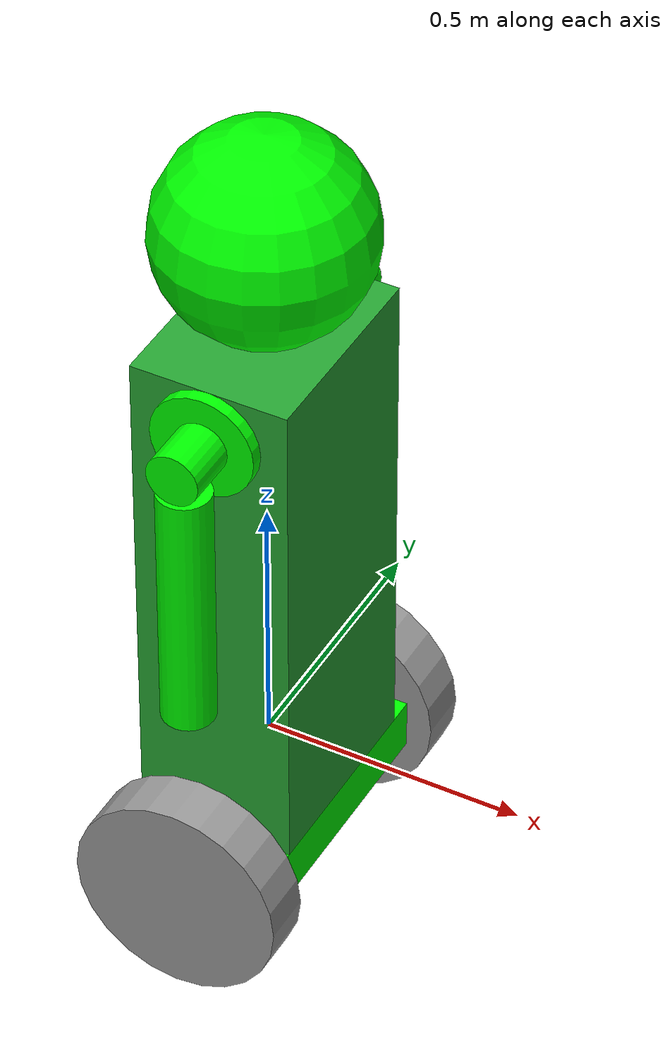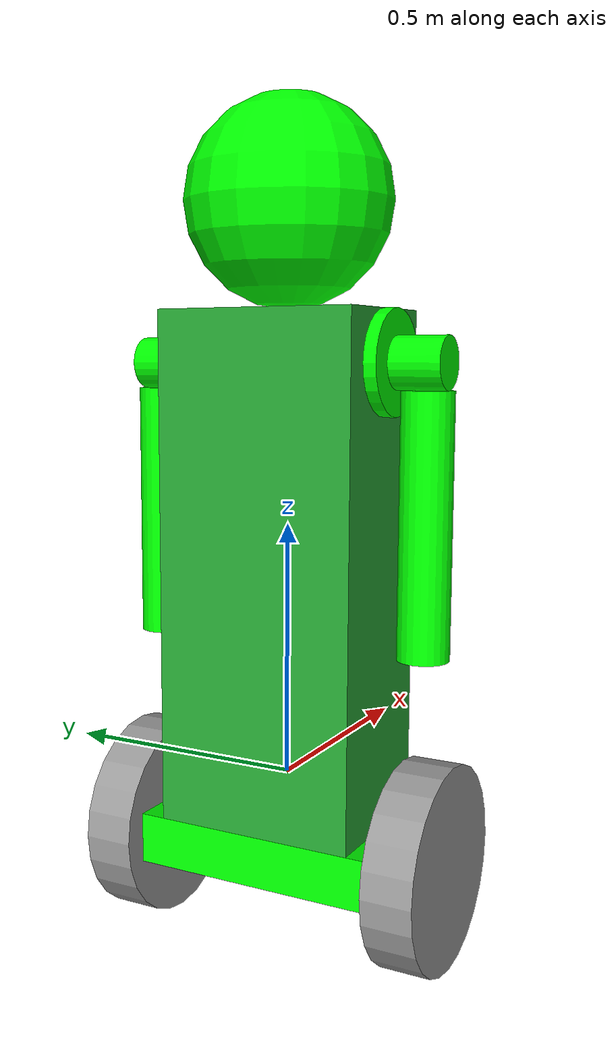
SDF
<?xml version='1.0'?>
<sdf version='1.6'>
  <model name='humanoid_robot'>
    <link name='link_0'>
      <pose frame=''>0 0 -0.1375 0 -0 0</pose>
      <inertial>
        <mass>10</mass>
        <inertia>
          <ixx>0.216667</ixx>
          <ixy>0</ixy>
          <ixz>0</ixz>
          <iyy>0.0833333</iyy>
          <iyz>0</iyz>
          <izz>0.283333</izz>
        </inertia>
        <pose frame=''>0 0 0 0 -0 0</pose>
      </inertial>
      <self_collide>0</self_collide>
      <kinematic>0</kinematic>
      <enable_wind>0</enable_wind>
      <gravity>1</gravity>
      <visual name='visual'>
        <pose frame=''>0 0 0 0 -0 0</pose>
        <geometry>
          <box>
            <size>0.3 0.5 0.1</size>
          </box>
        </geometry>
        <material>
          <lighting>1</lighting>
          <script>
            <uri>file://media/materials/scripts/gazebo.material</uri>
            <name>Gazebo/Grey</name>
          </script>
          <shader type='pixel'>
            <normal_map>__default__</normal_map>
          </shader>
          <ambient>0 1 0 1</ambient>
          <diffuse>0.7 0.7 0.7 1</diffuse>
          <specular>0.01 0.01 0.01 1</specular>
          <emissive>0 0 0 1</emissive>
        </material>
        <transparency>0</transparency>
        <cast_shadows>1</cast_shadows>
      </visual>
      <collision name='collision'>
        <laser_retro>0</laser_retro>
        <max_contacts>10</max_contacts>
        <pose frame=''>0 0 0 0 -0 0</pose>
        <geometry>
          <box>
            <size>0.3 0.5 0.1</size>
          </box>
        </geometry>
        <surface>
          <friction>
            <ode>
              <mu>1</mu>
              <mu2>1</mu2>
              <fdir1>0 0 0</fdir1>
              <slip1>0</slip1>
              <slip2>0</slip2>
            </ode>
            <torsional>
              <coefficient>1</coefficient>
              <patch_radius>0</patch_radius>
              <surface_radius>0</surface_radius>
              <use_patch_radius>1</use_patch_radius>
              <ode>
                <slip>0</slip>
              </ode>
            </torsional>
          </friction>
          <bounce>
            <restitution_coefficient>0</restitution_coefficient>
            <threshold>1e+06</threshold>
          </bounce>
          <contact>
            <collide_without_contact>0</collide_without_contact>
            <collide_without_contact_bitmask>1</collide_without_contact_bitmask>
            <collide_bitmask>1</collide_bitmask>
            <ode>
              <soft_cfm>0</soft_cfm>
              <soft_erp>0.2</soft_erp>
              <kp>1e+13</kp>
              <kd>1</kd>
              <max_vel>0.01</max_vel>
              <min_depth>0</min_depth>
            </ode>
            <bullet>
              <split_impulse>1</split_impulse>
              <split_impulse_penetration_threshold>-0.01</split_impulse_penetration_threshold>
              <soft_cfm>0</soft_cfm>
              <soft_erp>0.2</soft_erp>
              <kp>1e+13</kp>
              <kd>1</kd>
            </bullet>
          </contact>
        </surface>
      </collision>
    </link>
    <link name='link_0_0'>
      <pose frame=''>0 0 1.1125 0 -0 0</pose>
      <inertial>
        <mass>0.25</mass>
        <inertia>
          <ixx>0.1</ixx>
          <ixy>0</ixy>
          <ixz>0</ixz>
          <iyy>0.1</iyy>
          <iyz>0</iyz>
          <izz>0.1</izz>
        </inertia>
        <pose frame=''>0 0 0 0 -0 0</pose>
      </inertial>
      <self_collide>0</self_collide>
      <kinematic>0</kinematic>
      <enable_wind>0</enable_wind>
      <visual name='visual'>
        <pose frame=''>0 0 0 0 -0 0</pose>
        <geometry>
          <sphere>
            <radius>0.2</radius>
          </sphere>
        </geometry>
        <material>
          <lighting>1</lighting>
          <script>
            <uri>file://media/materials/scripts/gazebo.material</uri>
            <name>Gazebo/Grey</name>
          </script>
          <shader type='pixel'>
            <normal_map>__default__</normal_map>
          </shader>
          <ambient>0 1 0 1</ambient>
          <diffuse>0.7 0.7 0.7 1</diffuse>
          <specular>0.01 0.01 0.01 1</specular>
          <emissive>0 0 0 1</emissive>
        </material>
        <transparency>0</transparency>
        <cast_shadows>1</cast_shadows>
      </visual>
      <collision name='collision'>
        <laser_retro>0</laser_retro>
        <max_contacts>10</max_contacts>
        <pose frame=''>0 0 0 0 -0 0</pose>
        <geometry>
          <sphere>
            <radius>0.2</radius>
          </sphere>
        </geometry>
        <surface>
          <friction>
            <ode>
              <mu>1</mu>
              <mu2>1</mu2>
              <fdir1>0 0 0</fdir1>
              <slip1>0</slip1>
              <slip2>0</slip2>
            </ode>
            <torsional>
              <coefficient>1</coefficient>
              <patch_radius>0</patch_radius>
              <surface_radius>0</surface_radius>
              <use_patch_radius>1</use_patch_radius>
              <ode>
                <slip>0</slip>
              </ode>
            </torsional>
          </friction>
          <bounce>
            <restitution_coefficient>0</restitution_coefficient>
            <threshold>1e+06</threshold>
          </bounce>
          <contact>
            <collide_without_contact>0</collide_without_contact>
            <collide_without_contact_bitmask>1</collide_without_contact_bitmask>
            <collide_bitmask>1</collide_bitmask>
            <ode>
              <soft_cfm>0</soft_cfm>
              <soft_erp>0.2</soft_erp>
              <kp>1e+13</kp>
              <kd>1</kd>
              <max_vel>0.01</max_vel>
              <min_depth>0</min_depth>
            </ode>
            <bullet>
              <split_impulse>1</split_impulse>
              <split_impulse_penetration_threshold>-0.01</split_impulse_penetration_threshold>
              <soft_cfm>0</soft_cfm>
              <soft_erp>0.2</soft_erp>
              <kp>1e+13</kp>
              <kd>1</kd>
            </bullet>
          </contact>
        </surface>
      </collision>
    </link>
    <link name='link_1'>
      <pose frame=''>0 -0.300019 -0.137182 1.5707 -0 0</pose>
      <inertial>
        <mass>1</mass>
        <inertia>
          <ixx>0.145833</ixx>
          <ixy>0</ixy>
          <ixz>0</ixz>
          <iyy>0.145833</iyy>
          <iyz>0</iyz>
          <izz>0.125</izz>
        </inertia>
        <pose frame=''>0 0 0 0 -0 0</pose>
      </inertial>
      <self_collide>0</self_collide>
      <kinematic>0</kinematic>
      <enable_wind>0</enable_wind>
      <visual name='visual'>
        <pose frame=''>0 0 0 0 -0 0</pose>
        <geometry>
          <cylinder>
            <radius>0.2</radius>
            <length>0.1</length>
          </cylinder>
        </geometry>
        <material>
          <lighting>1</lighting>
          <script>
            <uri>file://media/materials/scripts/gazebo.material</uri>
            <name>Gazebo/Grey</name>
          </script>
          <shader type='pixel'>
            <normal_map>__default__</normal_map>
          </shader>
          <ambient>1 1 1 1</ambient>
          <diffuse>0.7 0.7 0.7 1</diffuse>
          <specular>0.01 0.01 0.01 1</specular>
          <emissive>0 0 0 1</emissive>
        </material>
        <transparency>0</transparency>
        <cast_shadows>1</cast_shadows>
      </visual>
      <collision name='collision'>
        <laser_retro>0</laser_retro>
        <max_contacts>10</max_contacts>
        <pose frame=''>0 0 0 0 -0 0</pose>
        <geometry>
          <cylinder>
            <radius>0.2</radius>
            <length>0.1</length>
          </cylinder>
        </geometry>
        <surface>
          <friction>
            <ode>
              <mu>1</mu>
              <mu2>1</mu2>
              <fdir1>0 0 0</fdir1>
              <slip1>0</slip1>
              <slip2>0</slip2>
            </ode>
            <torsional>
              <coefficient>1</coefficient>
              <patch_radius>0</patch_radius>
              <surface_radius>0</surface_radius>
              <use_patch_radius>1</use_patch_radius>
              <ode>
                <slip>0</slip>
              </ode>
            </torsional>
          </friction>
          <bounce>
            <restitution_coefficient>0</restitution_coefficient>
            <threshold>1e+06</threshold>
          </bounce>
          <contact>
            <collide_without_contact>0</collide_without_contact>
            <collide_without_contact_bitmask>1</collide_without_contact_bitmask>
            <collide_bitmask>1</collide_bitmask>
            <ode>
              <soft_cfm>0</soft_cfm>
              <soft_erp>0.2</soft_erp>
              <kp>1e+13</kp>
              <kd>1</kd>
              <max_vel>0.01</max_vel>
              <min_depth>0</min_depth>
            </ode>
            <bullet>
              <split_impulse>1</split_impulse>
              <split_impulse_penetration_threshold>-0.01</split_impulse_penetration_threshold>
              <soft_cfm>0</soft_cfm>
              <soft_erp>0.2</soft_erp>
              <kp>1e+13</kp>
              <kd>1</kd>
            </bullet>
          </contact>
        </surface>
      </collision>
    </link>
    <link name='link_1_0'>
      <pose frame=''>0 -0.275033 0.812507 1.5707 -0 0</pose>
      <inertial>
        <mass>0.1</mass>
        <inertia>
          <ixx>0.145833</ixx>
          <ixy>0</ixy>
          <ixz>0</ixz>
          <iyy>0.145833</iyy>
          <iyz>0</iyz>
          <izz>0.125</izz>
        </inertia>
        <pose frame=''>0 0 0 0 -0 0</pose>
      </inertial>
      <self_collide>0</self_collide>
      <kinematic>0</kinematic>
      <enable_wind>0</enable_wind>
      <visual name='visual'>
        <pose frame=''>0 0 0 0 -0 0</pose>
        <geometry>
          <cylinder>
            <radius>0.05</radius>
            <length>0.1</length>
          </cylinder>
        </geometry>
        <material>
          <lighting>1</lighting>
          <script>
            <uri>file://media/materials/scripts/gazebo.material</uri>
            <name>Gazebo/Grey</name>
          </script>
          <shader type='pixel'>
            <normal_map>__default__</normal_map>
          </shader>
          <ambient>0 1 0 1</ambient>
          <diffuse>0.7 0.7 0.7 1</diffuse>
          <specular>0.01 0.01 0.01 1</specular>
          <emissive>0 0 0 1</emissive>
        </material>
        <transparency>0</transparency>
        <cast_shadows>1</cast_shadows>
      </visual>
      <collision name='collision'>
        <laser_retro>0</laser_retro>
        <max_contacts>10</max_contacts>
        <pose frame=''>0 0 0 0 -0 0</pose>
        <geometry>
          <cylinder>
            <radius>0.05</radius>
            <length>0.1</length>
          </cylinder>
        </geometry>
        <surface>
          <friction>
            <ode>
              <mu>1</mu>
              <mu2>1</mu2>
              <fdir1>0 0 0</fdir1>
              <slip1>0</slip1>
              <slip2>0</slip2>
            </ode>
            <torsional>
              <coefficient>1</coefficient>
              <patch_radius>0</patch_radius>
              <surface_radius>0</surface_radius>
              <use_patch_radius>1</use_patch_radius>
              <ode>
                <slip>0</slip>
              </ode>
            </torsional>
          </friction>
          <bounce>
            <restitution_coefficient>0</restitution_coefficient>
            <threshold>1e+06</threshold>
          </bounce>
          <contact>
            <collide_without_contact>0</collide_without_contact>
            <collide_without_contact_bitmask>1</collide_without_contact_bitmask>
            <collide_bitmask>1</collide_bitmask>
            <ode>
              <soft_cfm>0</soft_cfm>
              <soft_erp>0.2</soft_erp>
              <kp>1e+13</kp>
              <kd>1</kd>
              <max_vel>0.01</max_vel>
              <min_depth>0</min_depth>
            </ode>
            <bullet>
              <split_impulse>1</split_impulse>
              <split_impulse_penetration_threshold>-0.01</split_impulse_penetration_threshold>
              <soft_cfm>0</soft_cfm>
              <soft_erp>0.2</soft_erp>
              <kp>1e+13</kp>
              <kd>1</kd>
            </bullet>
          </contact>
        </surface>
      </collision>
    </link>
    <link name='link_1_0_clone'>
      <pose frame=''>0 0.275024 0.812479 1.5707 -0 0</pose>
      <inertial>
        <mass>0.1</mass>
        <inertia>
          <ixx>0.145833</ixx>
          <ixy>0</ixy>
          <ixz>0</ixz>
          <iyy>0.145833</iyy>
          <iyz>0</iyz>
          <izz>0.125</izz>
        </inertia>
        <pose frame=''>0 0 0 0 -0 0</pose>
      </inertial>
      <self_collide>0</self_collide>
      <kinematic>0</kinematic>
      <enable_wind>0</enable_wind>
      <visual name='visual_0'>
        <pose frame=''>0 0 0 0 -0 0</pose>
        <geometry>
          <cylinder>
            <radius>0.05</radius>
            <length>0.1</length>
          </cylinder>
        </geometry>
        <material>
          <lighting>1</lighting>
          <script>
            <uri>file://media/materials/scripts/gazebo.material</uri>
            <name>Gazebo/Grey</name>
          </script>
          <shader type='pixel'>
            <normal_map>__default__</normal_map>
          </shader>
          <ambient>0 1 0 1</ambient>
          <diffuse>0.7 0.7 0.7 1</diffuse>
          <specular>0.01 0.01 0.01 1</specular>
          <emissive>0 0 0 1</emissive>
        </material>
        <transparency>0</transparency>
        <cast_shadows>1</cast_shadows>
      </visual>
      <collision name='collision'>
        <laser_retro>0</laser_retro>
        <max_contacts>10</max_contacts>
        <pose frame=''>0 0 0 0 -0 0</pose>
        <geometry>
          <cylinder>
            <radius>0.05</radius>
            <length>0.1</length>
          </cylinder>
        </geometry>
        <surface>
          <friction>
            <ode>
              <mu>1</mu>
              <mu2>1</mu2>
              <fdir1>0 0 0</fdir1>
              <slip1>0</slip1>
              <slip2>0</slip2>
            </ode>
            <torsional>
              <coefficient>1</coefficient>
              <patch_radius>0</patch_radius>
              <surface_radius>0</surface_radius>
              <use_patch_radius>1</use_patch_radius>
              <ode>
                <slip>0</slip>
              </ode>
            </torsional>
          </friction>
          <bounce>
            <restitution_coefficient>0</restitution_coefficient>
            <threshold>1e+06</threshold>
          </bounce>
          <contact>
            <collide_without_contact>0</collide_without_contact>
            <collide_without_contact_bitmask>1</collide_without_contact_bitmask>
            <collide_bitmask>1</collide_bitmask>
            <ode>
              <soft_cfm>0</soft_cfm>
              <soft_erp>0.2</soft_erp>
              <kp>1e+13</kp>
              <kd>1</kd>
              <max_vel>0.01</max_vel>
              <min_depth>0</min_depth>
            </ode>
            <bullet>
              <split_impulse>1</split_impulse>
              <split_impulse_penetration_threshold>-0.01</split_impulse_penetration_threshold>
              <soft_cfm>0</soft_cfm>
              <soft_erp>0.2</soft_erp>
              <kp>1e+13</kp>
              <kd>1</kd>
            </bullet>
          </contact>
        </surface>
      </collision>
    </link>
    <link name='link_1_clone'>
      <pose frame=''>0 0.300019 -0.137182 1.5707 -0 0</pose>
      <inertial>
        <mass>1</mass>
        <inertia>
          <ixx>0.145833</ixx>
          <ixy>0</ixy>
          <ixz>0</ixz>
          <iyy>0.145833</iyy>
          <iyz>0</iyz>
          <izz>0.125</izz>
        </inertia>
        <pose frame=''>0 0 0 0 -0 0</pose>
      </inertial>
      <self_collide>0</self_collide>
      <kinematic>0</kinematic>
      <enable_wind>0</enable_wind>
      <visual name='visual'>
        <pose frame=''>0 0 0 0 -0 0</pose>
        <geometry>
          <cylinder>
            <radius>0.2</radius>
            <length>0.1</length>
          </cylinder>
        </geometry>
        <material>
          <lighting>1</lighting>
          <script>
            <uri>file://media/materials/scripts/gazebo.material</uri>
            <name>Gazebo/Grey</name>
          </script>
          <shader type='pixel'>
            <normal_map>__default__</normal_map>
          </shader>
          <ambient>1 1 1 1</ambient>
          <diffuse>0.7 0.7 0.7 1</diffuse>
          <specular>0.01 0.01 0.01 1</specular>
          <emissive>0 0 0 1</emissive>
        </material>
        <transparency>0</transparency>
        <cast_shadows>1</cast_shadows>
      </visual>
      <collision name='collision'>
        <laser_retro>0</laser_retro>
        <max_contacts>10</max_contacts>
        <pose frame=''>0 0 0 0 -0 0</pose>
        <geometry>
          <cylinder>
            <radius>0.2</radius>
            <length>0.1</length>
          </cylinder>
        </geometry>
        <surface>
          <friction>
            <ode>
              <mu>1</mu>
              <mu2>1</mu2>
              <fdir1>0 0 0</fdir1>
              <slip1>0</slip1>
              <slip2>0</slip2>
            </ode>
            <torsional>
              <coefficient>1</coefficient>
              <patch_radius>0</patch_radius>
              <surface_radius>0</surface_radius>
              <use_patch_radius>1</use_patch_radius>
              <ode>
                <slip>0</slip>
              </ode>
            </torsional>
          </friction>
          <bounce>
            <restitution_coefficient>0</restitution_coefficient>
            <threshold>1e+06</threshold>
          </bounce>
          <contact>
            <collide_without_contact>0</collide_without_contact>
            <collide_without_contact_bitmask>1</collide_without_contact_bitmask>
            <collide_bitmask>1</collide_bitmask>
            <ode>
              <soft_cfm>0</soft_cfm>
              <soft_erp>0.2</soft_erp>
              <kp>1e+13</kp>
              <kd>1</kd>
              <max_vel>0.01</max_vel>
              <min_depth>0</min_depth>
            </ode>
            <bullet>
              <split_impulse>1</split_impulse>
              <split_impulse_penetration_threshold>-0.01</split_impulse_penetration_threshold>
              <soft_cfm>0</soft_cfm>
              <soft_erp>0.2</soft_erp>
              <kp>1e+13</kp>
              <kd>1</kd>
            </bullet>
          </contact>
        </surface>
      </collision>
    </link>
    <link name='link_1_clone_0'>
      <pose frame=''>0 -0.21251 0.812499 1.5707 -0 0</pose>
      <inertial>
        <mass>1</mass>
        <inertia>
          <ixx>0.145833</ixx>
          <ixy>0</ixy>
          <ixz>0</ixz>
          <iyy>0.145833</iyy>
          <iyz>0</iyz>
          <izz>0.125</izz>
        </inertia>
        <pose frame=''>0 0 0 0 -0 0</pose>
      </inertial>
      <self_collide>0</self_collide>
      <kinematic>0</kinematic>
      <enable_wind>0</enable_wind>
      <visual name='visual'>
        <pose frame=''>0 0 0 0 -0 0</pose>
        <geometry>
          <cylinder>
            <radius>0.1</radius>
            <length>0.025</length>
          </cylinder>
        </geometry>
        <material>
          <lighting>1</lighting>
          <script>
            <uri>file://media/materials/scripts/gazebo.material</uri>
            <name>Gazebo/Grey</name>
          </script>
          <shader type='pixel'>
            <normal_map>__default__</normal_map>
          </shader>
          <ambient>0 1 0 1</ambient>
          <diffuse>0.7 0.7 0.7 1</diffuse>
          <specular>0.01 0.01 0.01 1</specular>
          <emissive>0 0 0 1</emissive>
        </material>
        <transparency>0</transparency>
        <cast_shadows>1</cast_shadows>
      </visual>
      <collision name='collision'>
        <laser_retro>0</laser_retro>
        <max_contacts>10</max_contacts>
        <pose frame=''>0 0 0 0 -0 0</pose>
        <geometry>
          <cylinder>
            <radius>0.1</radius>
            <length>0.025</length>
          </cylinder>
        </geometry>
        <surface>
          <friction>
            <ode>
              <mu>1</mu>
              <mu2>1</mu2>
              <fdir1>0 0 0</fdir1>
              <slip1>0</slip1>
              <slip2>0</slip2>
            </ode>
            <torsional>
              <coefficient>1</coefficient>
              <patch_radius>0</patch_radius>
              <surface_radius>0</surface_radius>
              <use_patch_radius>1</use_patch_radius>
              <ode>
                <slip>0</slip>
              </ode>
            </torsional>
          </friction>
          <bounce>
            <restitution_coefficient>0</restitution_coefficient>
            <threshold>1e+06</threshold>
          </bounce>
          <contact>
            <collide_without_contact>0</collide_without_contact>
            <collide_without_contact_bitmask>1</collide_without_contact_bitmask>
            <collide_bitmask>1</collide_bitmask>
            <ode>
              <soft_cfm>0</soft_cfm>
              <soft_erp>0.2</soft_erp>
              <kp>1e+13</kp>
              <kd>1</kd>
              <max_vel>0.01</max_vel>
              <min_depth>0</min_depth>
            </ode>
            <bullet>
              <split_impulse>1</split_impulse>
              <split_impulse_penetration_threshold>-0.01</split_impulse_penetration_threshold>
              <soft_cfm>0</soft_cfm>
              <soft_erp>0.2</soft_erp>
              <kp>1e+13</kp>
              <kd>1</kd>
            </bullet>
          </contact>
        </surface>
      </collision>
    </link>
    <link name='link_1_clone_0_clone'>
      <pose frame=''>0 0.21251 0.812499 1.5707 -0 0</pose>
      <inertial>
        <mass>1</mass>
        <inertia>
          <ixx>0.145833</ixx>
          <ixy>0</ixy>
          <ixz>0</ixz>
          <iyy>0.145833</iyy>
          <iyz>0</iyz>
          <izz>0.125</izz>
        </inertia>
        <pose frame=''>0 0 0 0 -0 0</pose>
      </inertial>
      <self_collide>0</self_collide>
      <kinematic>0</kinematic>
      <enable_wind>0</enable_wind>
      <visual name='visual'>
        <pose frame=''>0 0 0 0 -0 0</pose>
        <geometry>
          <cylinder>
            <radius>0.1</radius>
            <length>0.025</length>
          </cylinder>
        </geometry>
        <material>
          <lighting>1</lighting>
          <script>
            <uri>file://media/materials/scripts/gazebo.material</uri>
            <name>Gazebo/Grey</name>
          </script>
          <shader type='pixel'>
            <normal_map>__default__</normal_map>
          </shader>
          <ambient>0 1 0 1</ambient>
          <diffuse>0.7 0.7 0.7 1</diffuse>
          <specular>0.01 0.01 0.01 1</specular>
          <emissive>0 0 0 1</emissive>
        </material>
        <transparency>0</transparency>
        <cast_shadows>1</cast_shadows>
      </visual>
      <collision name='collision'>
        <laser_retro>0</laser_retro>
        <max_contacts>10</max_contacts>
        <pose frame=''>0 0 0 0 -0 0</pose>
        <geometry>
          <cylinder>
            <radius>0.1</radius>
            <length>0.025</length>
          </cylinder>
        </geometry>
        <surface>
          <friction>
            <ode>
              <mu>1</mu>
              <mu2>1</mu2>
              <fdir1>0 0 0</fdir1>
              <slip1>0</slip1>
              <slip2>0</slip2>
            </ode>
            <torsional>
              <coefficient>1</coefficient>
              <patch_radius>0</patch_radius>
              <surface_radius>0</surface_radius>
              <use_patch_radius>1</use_patch_radius>
              <ode>
                <slip>0</slip>
              </ode>
            </torsional>
          </friction>
          <bounce>
            <restitution_coefficient>0</restitution_coefficient>
            <threshold>1e+06</threshold>
          </bounce>
          <contact>
            <collide_without_contact>0</collide_without_contact>
            <collide_without_contact_bitmask>1</collide_without_contact_bitmask>
            <collide_bitmask>1</collide_bitmask>
            <ode>
              <soft_cfm>0</soft_cfm>
              <soft_erp>0.2</soft_erp>
              <kp>1e+13</kp>
              <kd>1</kd>
              <max_vel>0.01</max_vel>
              <min_depth>0</min_depth>
            </ode>
            <bullet>
              <split_impulse>1</split_impulse>
              <split_impulse_penetration_threshold>-0.01</split_impulse_penetration_threshold>
              <soft_cfm>0</soft_cfm>
              <soft_erp>0.2</soft_erp>
              <kp>1e+13</kp>
              <kd>1</kd>
            </bullet>
          </contact>
        </surface>
      </collision>
    </link>
    <link name='link_3'>
      <pose frame=''>0 0 0.4125 0 -0 0</pose>
      <inertial>
        <mass>1</mass>
        <inertia>
          <ixx>0.166667</ixx>
          <ixy>0</ixy>
          <ixz>0</ixz>
          <iyy>0.166667</iyy>
          <iyz>0</iyz>
          <izz>0.166667</izz>
        </inertia>
        <pose frame=''>0 0 0 0 -0 0</pose>
      </inertial>
      <self_collide>0</self_collide>
      <kinematic>0</kinematic>
      <enable_wind>0</enable_wind>
      <visual name='visual'>
        <pose frame=''>0 0 0 0 -0 0</pose>
        <geometry>
          <box>
            <size>0.3 0.4 1</size>
          </box>
        </geometry>
        <material>
          <lighting>1</lighting>
          <script>
            <uri>file://media/materials/scripts/gazebo.material</uri>
            <name>Gazebo/Green</name>
          </script>
          <shader type='pixel'>
            <normal_map>__default__</normal_map>
          </shader>
          <ambient>0 1 0 1</ambient>
          <diffuse>0.7 0.7 0.7 1</diffuse>
          <specular>0.01 0.01 0.01 1</specular>
          <emissive>0 0 0 1</emissive>
        </material>
        <transparency>0</transparency>
        <cast_shadows>1</cast_shadows>
      </visual>
      <collision name='collision'>
        <laser_retro>0</laser_retro>
        <max_contacts>10</max_contacts>
        <pose frame=''>0 0 0 0 -0 0</pose>
        <geometry>
          <box>
            <size>0.3 0.4 1</size>
          </box>
        </geometry>
        <surface>
          <friction>
            <ode>
              <mu>1</mu>
              <mu2>1</mu2>
              <fdir1>0 0 0</fdir1>
              <slip1>0</slip1>
              <slip2>0</slip2>
            </ode>
            <torsional>
              <coefficient>1</coefficient>
              <patch_radius>0</patch_radius>
              <surface_radius>0</surface_radius>
              <use_patch_radius>1</use_patch_radius>
              <ode>
                <slip>0</slip>
              </ode>
            </torsional>
          </friction>
          <bounce>
            <restitution_coefficient>0</restitution_coefficient>
            <threshold>1e+06</threshold>
          </bounce>
          <contact>
            <collide_without_contact>0</collide_without_contact>
            <collide_without_contact_bitmask>1</collide_without_contact_bitmask>
            <collide_bitmask>1</collide_bitmask>
            <ode>
              <soft_cfm>0</soft_cfm>
              <soft_erp>0.2</soft_erp>
              <kp>1e+13</kp>
              <kd>1</kd>
              <max_vel>0.01</max_vel>
              <min_depth>0</min_depth>
            </ode>
            <bullet>
              <split_impulse>1</split_impulse>
              <split_impulse_penetration_threshold>-0.01</split_impulse_penetration_threshold>
              <soft_cfm>0</soft_cfm>
              <soft_erp>0.2</soft_erp>
              <kp>1e+13</kp>
              <kd>1</kd>
            </bullet>
          </contact>
        </surface>
      </collision>
    </link>
    <link name='link_3_0'>
      <pose frame=''>0 -0.285062 0.512562 0 -0 0</pose>
      <inertial>
        <mass>0.5</mass>
        <inertia>
          <ixx>0.145833</ixx>
          <ixy>0</ixy>
          <ixz>0</ixz>
          <iyy>0.145833</iyy>
          <iyz>0</iyz>
          <izz>0.125</izz>
        </inertia>
        <pose frame=''>0 0 0 0 -0 0</pose>
      </inertial>
      <self_collide>0</self_collide>
      <kinematic>0</kinematic>
      <enable_wind>0</enable_wind>
      <visual name='visual'>
        <pose frame=''>0 0 0 0 -0 0</pose>
        <geometry>
          <cylinder>
            <radius>0.05</radius>
            <length>0.5</length>
          </cylinder>
        </geometry>
        <material>
          <lighting>1</lighting>
          <script>
            <uri>file://media/materials/scripts/gazebo.material</uri>
            <name>Gazebo/Grey</name>
          </script>
          <shader type='pixel'>
            <normal_map>__default__</normal_map>
          </shader>
          <ambient>0 1 0 1</ambient>
          <diffuse>0.7 0.7 0.7 1</diffuse>
          <specular>0.01 0.01 0.01 1</specular>
          <emissive>0 0 0 1</emissive>
        </material>
        <transparency>0</transparency>
        <cast_shadows>1</cast_shadows>
      </visual>
      <collision name='collision'>
        <laser_retro>0</laser_retro>
        <max_contacts>10</max_contacts>
        <pose frame=''>0 0 0 0 -0 0</pose>
        <geometry>
          <cylinder>
            <radius>0.05</radius>
            <length>0.5</length>
          </cylinder>
        </geometry>
        <surface>
          <friction>
            <ode>
              <mu>1</mu>
              <mu2>1</mu2>
              <fdir1>0 0 0</fdir1>
              <slip1>0</slip1>
              <slip2>0</slip2>
            </ode>
            <torsional>
              <coefficient>1</coefficient>
              <patch_radius>0</patch_radius>
              <surface_radius>0</surface_radius>
              <use_patch_radius>1</use_patch_radius>
              <ode>
                <slip>0</slip>
              </ode>
            </torsional>
          </friction>
          <bounce>
            <restitution_coefficient>0</restitution_coefficient>
            <threshold>1e+06</threshold>
          </bounce>
          <contact>
            <collide_without_contact>0</collide_without_contact>
            <collide_without_contact_bitmask>1</collide_without_contact_bitmask>
            <collide_bitmask>1</collide_bitmask>
            <ode>
              <soft_cfm>0</soft_cfm>
              <soft_erp>0.2</soft_erp>
              <kp>1e+13</kp>
              <kd>1</kd>
              <max_vel>0.01</max_vel>
              <min_depth>0</min_depth>
            </ode>
            <bullet>
              <split_impulse>1</split_impulse>
              <split_impulse_penetration_threshold>-0.01</split_impulse_penetration_threshold>
              <soft_cfm>0</soft_cfm>
              <soft_erp>0.2</soft_erp>
              <kp>1e+13</kp>
              <kd>1</kd>
            </bullet>
          </contact>
        </surface>
      </collision>
    </link>
    <link name='link_3_0_clone'>
      <pose frame=''>0 0.284995 0.512478 0 -0 0</pose>
      <inertial>
        <mass>0.5</mass>
        <inertia>
          <ixx>0.145833</ixx>
          <ixy>0</ixy>
          <ixz>0</ixz>
          <iyy>0.145833</iyy>
          <iyz>0</iyz>
          <izz>0.125</izz>
        </inertia>
        <pose frame=''>0 0 0 0 -0 0</pose>
      </inertial>
      <self_collide>0</self_collide>
      <kinematic>0</kinematic>
      <enable_wind>0</enable_wind>
      <visual name='visual_0'>
        <pose frame=''>0 0 0 0 -0 0</pose>
        <geometry>
          <cylinder>
            <radius>0.05</radius>
            <length>0.5</length>
          </cylinder>
        </geometry>
        <material>
          <lighting>1</lighting>
          <script>
            <uri>file://media/materials/scripts/gazebo.material</uri>
            <name>Gazebo/Grey</name>
          </script>
          <shader type='pixel'>
            <normal_map>__default__</normal_map>
          </shader>
          <ambient>0 1 0 1</ambient>
          <diffuse>0.7 0.7 0.7 1</diffuse>
          <specular>0.01 0.01 0.01 1</specular>
          <emissive>0 0 0 1</emissive>
        </material>
        <transparency>0</transparency>
        <cast_shadows>1</cast_shadows>
      </visual>
      <collision name='collision'>
        <laser_retro>0</laser_retro>
        <max_contacts>10</max_contacts>
        <pose frame=''>0 0 0 0 -0 0</pose>
        <geometry>
          <cylinder>
            <radius>0.05</radius>
            <length>0.5</length>
          </cylinder>
        </geometry>
        <surface>
          <friction>
            <ode>
              <mu>1</mu>
              <mu2>1</mu2>
              <fdir1>0 0 0</fdir1>
              <slip1>0</slip1>
              <slip2>0</slip2>
            </ode>
            <torsional>
              <coefficient>1</coefficient>
              <patch_radius>0</patch_radius>
              <surface_radius>0</surface_radius>
              <use_patch_radius>1</use_patch_radius>
              <ode>
                <slip>0</slip>
              </ode>
            </torsional>
          </friction>
          <bounce>
            <restitution_coefficient>0</restitution_coefficient>
            <threshold>1e+06</threshold>
          </bounce>
          <contact>
            <collide_without_contact>0</collide_without_contact>
            <collide_without_contact_bitmask>1</collide_without_contact_bitmask>
            <collide_bitmask>1</collide_bitmask>
            <ode>
              <soft_cfm>0</soft_cfm>
              <soft_erp>0.2</soft_erp>
              <kp>1e+13</kp>
              <kd>1</kd>
              <max_vel>0.01</max_vel>
              <min_depth>0</min_depth>
            </ode>
            <bullet>
              <split_impulse>1</split_impulse>
              <split_impulse_penetration_threshold>-0.01</split_impulse_penetration_threshold>
              <soft_cfm>0</soft_cfm>
              <soft_erp>0.2</soft_erp>
              <kp>1e+13</kp>
              <kd>1</kd>
            </bullet>
          </contact>
        </surface>
      </collision>
    </link>
    <joint name='link_0_JOINT_2' type='fixed'>
      <parent>link_0</parent>
      <child>link_3</child>
      <pose frame=''>0 0 0 0 -0 0</pose>
      <physics>
        <ode>
          <limit>
            <cfm>0</cfm>
            <erp>0.2</erp>
          </limit>
          <suspension>
            <cfm>0</cfm>
            <erp>0.2</erp>
          </suspension>
        </ode>
      </physics>
    </joint>
    <joint name='link_0_JOINT_3' type='revolute'>
      <parent>link_0</parent>
      <child>link_1</child>
      <pose frame=''>0 0 0 0 -0 0</pose>
      <axis>
        <xyz>-0 -0 -1</xyz>
        <use_parent_model_frame>0</use_parent_model_frame>
        <limit>
          <lower>-1.79769e+308</lower>
          <upper>1.79769e+308</upper>
          <effort>-1</effort>
          <velocity>-1</velocity>
        </limit>
        <dynamics>
          <spring_reference>0</spring_reference>
          <spring_stiffness>0</spring_stiffness>
          <damping>0</damping>
        </dynamics>
      </axis>
      <physics>
        <ode>
          <limit>
            <cfm>0</cfm>
            <erp>0.2</erp>
          </limit>
          <suspension>
            <cfm>0</cfm>
            <erp>0.2</erp>
          </suspension>
        </ode>
      </physics>
    </joint>
    <joint name='link_0_JOINT_5' type='revolute'>
      <parent>link_0</parent>
      <child>link_1_clone</child>
      <pose frame=''>0 0 0 0 -0 0</pose>
      <axis>
        <xyz>0 0 1</xyz>
        <use_parent_model_frame>0</use_parent_model_frame>
        <limit>
          <lower>-1.79769e+308</lower>
          <upper>1.79769e+308</upper>
          <effort>-1</effort>
          <velocity>-1</velocity>
        </limit>
        <dynamics>
          <spring_reference>0</spring_reference>
          <spring_stiffness>0</spring_stiffness>
          <damping>0</damping>
        </dynamics>
      </axis>
      <physics>
        <ode>
          <limit>
            <cfm>0</cfm>
            <erp>0.2</erp>
          </limit>
          <suspension>
            <cfm>0</cfm>
            <erp>0.2</erp>
          </suspension>
        </ode>
      </physics>
    </joint>
    <joint name='link_1_0_JOINT_16' type='fixed'>
      <parent>link_1_0</parent>
      <child>link_3_0</child>
      <pose frame=''>0 0 0 0 -0 0</pose>
      <physics>
        <ode>
          <limit>
            <cfm>0</cfm>
            <erp>0.2</erp>
          </limit>
          <suspension>
            <cfm>0</cfm>
            <erp>0.2</erp>
          </suspension>
        </ode>
      </physics>
    </joint>
    <joint name='link_1_0_clone_JOINT_17' type='fixed'>
      <parent>link_1_0_clone</parent>
      <child>link_3_0_clone</child>
      <pose frame=''>0 0 0 0 -0 0</pose>
      <physics>
        <ode>
          <limit>
            <cfm>0</cfm>
            <erp>0.2</erp>
          </limit>
          <suspension>
            <cfm>0</cfm>
            <erp>0.2</erp>
          </suspension>
        </ode>
      </physics>
    </joint>
    <joint name='link_1_clone_0_JOINT_10' type='revolute'>
      <parent>link_1_clone_0</parent>
      <child>link_1_0</child>
      <pose frame=''>0 0 0 0 -0 0</pose>
      <axis>
        <xyz>0 0 1</xyz>
        <use_parent_model_frame>0</use_parent_model_frame>
        <limit>
          <lower>-1.79769e+308</lower>
          <upper>1.79769e+308</upper>
          <effort>50</effort>
          <velocity>-1</velocity>
        </limit>
        <dynamics>
          <spring_reference>0</spring_reference>
          <spring_stiffness>0</spring_stiffness>
          <damping>0</damping>
          <friction>0</friction>
        </dynamics>
      </axis>
      <physics>
        <ode>
          <limit>
            <cfm>0</cfm>
            <erp>0.2</erp>
          </limit>
          <suspension>
            <cfm>0</cfm>
            <erp>0.2</erp>
          </suspension>
        </ode>
      </physics>
    </joint>
    <joint name='link_1_clone_0_clone_JOINT_0' type='revolute'>
      <parent>link_1_clone_0_clone</parent>
      <child>link_1_0_clone</child>
      <pose frame=''>0 0 0 0 -0 0</pose>
      <axis>
        <xyz>0 0 1</xyz>
        <use_parent_model_frame>0</use_parent_model_frame>
        <limit>
          <lower>-1.79769e+308</lower>
          <upper>1.79769e+308</upper>
          <effort>50</effort>
          <velocity>-1</velocity>
        </limit>
        <dynamics>
          <spring_reference>0</spring_reference>
          <spring_stiffness>0</spring_stiffness>
          <damping>0</damping>
          <friction>0</friction>
        </dynamics>
      </axis>
      <physics>
        <ode>
          <limit>
            <cfm>0</cfm>
            <erp>0.2</erp>
          </limit>
          <suspension>
            <cfm>0</cfm>
            <erp>0.2</erp>
          </suspension>
        </ode>
      </physics>
    </joint>
    <joint name='link_3_JOINT_2' type='fixed'>
      <parent>link_3</parent>
      <child>link_1_clone_0</child>
      <pose frame=''>0 0 0 0 -0 0</pose>
      <physics>
        <ode>
          <limit>
            <cfm>0</cfm>
            <erp>0.2</erp>
          </limit>
          <suspension>
            <cfm>0</cfm>
            <erp>0.2</erp>
          </suspension>
        </ode>
      </physics>
    </joint>
    <joint name='link_3_JOINT_3' type='fixed'>
      <parent>link_3</parent>
      <child>link_1_clone_0_clone</child>
      <pose frame=''>0 0 0 0 -0 0</pose>
      <physics>
        <ode>
          <limit>
            <cfm>0</cfm>
            <erp>0.2</erp>
          </limit>
          <suspension>
            <cfm>0</cfm>
            <erp>0.2</erp>
          </suspension>
        </ode>
      </physics>
    </joint>
    <joint name='link_3_JOINT_5' type='fixed'>
      <parent>link_3</parent>
      <child>link_0_0</child>
      <pose frame=''>0 0 0 0 -0 0</pose>
      <physics>
        <ode>
          <limit>
            <cfm>0</cfm>
            <erp>0.2</erp>
          </limit>
          <suspension>
            <cfm>0</cfm>
            <erp>0.2</erp>
          </suspension>
        </ode>
      </physics>
    </joint>
    <static>0</static>
    <allow_auto_disable>1</allow_auto_disable>
  </model>
</sdf>
